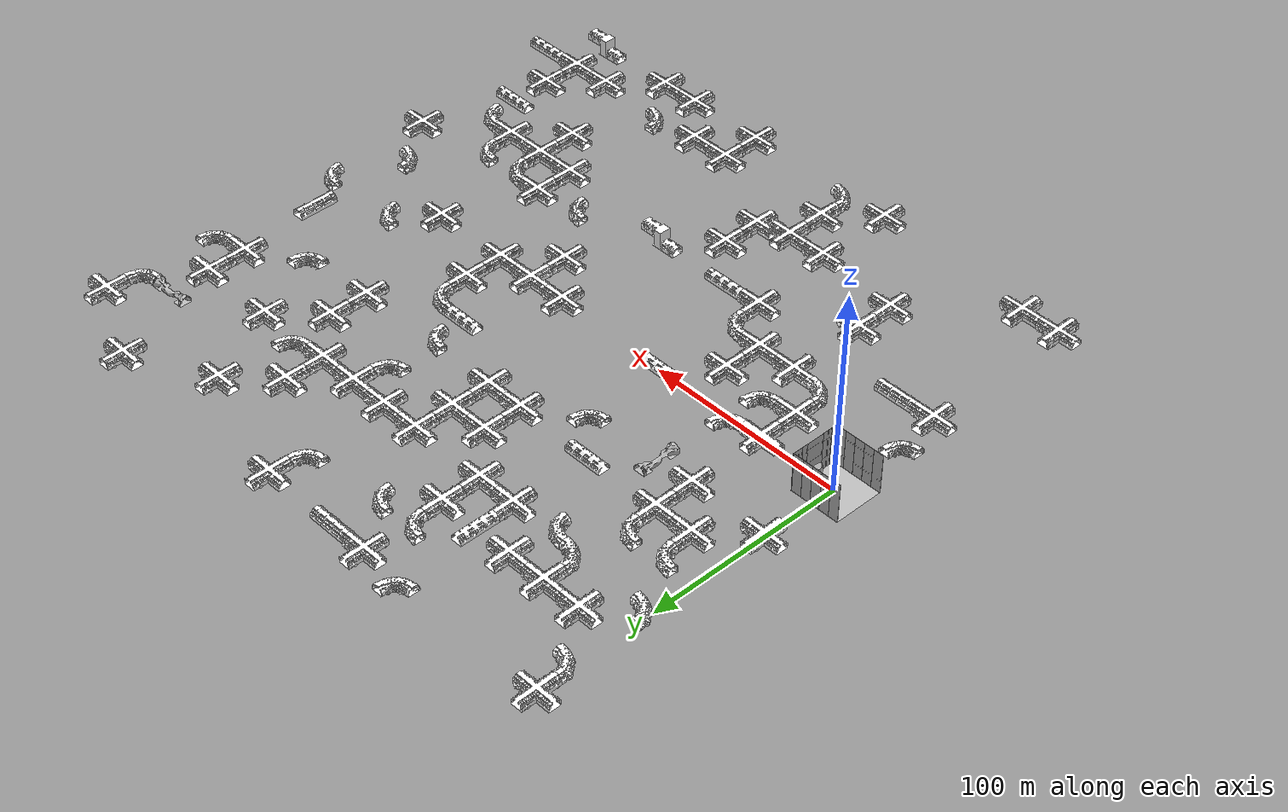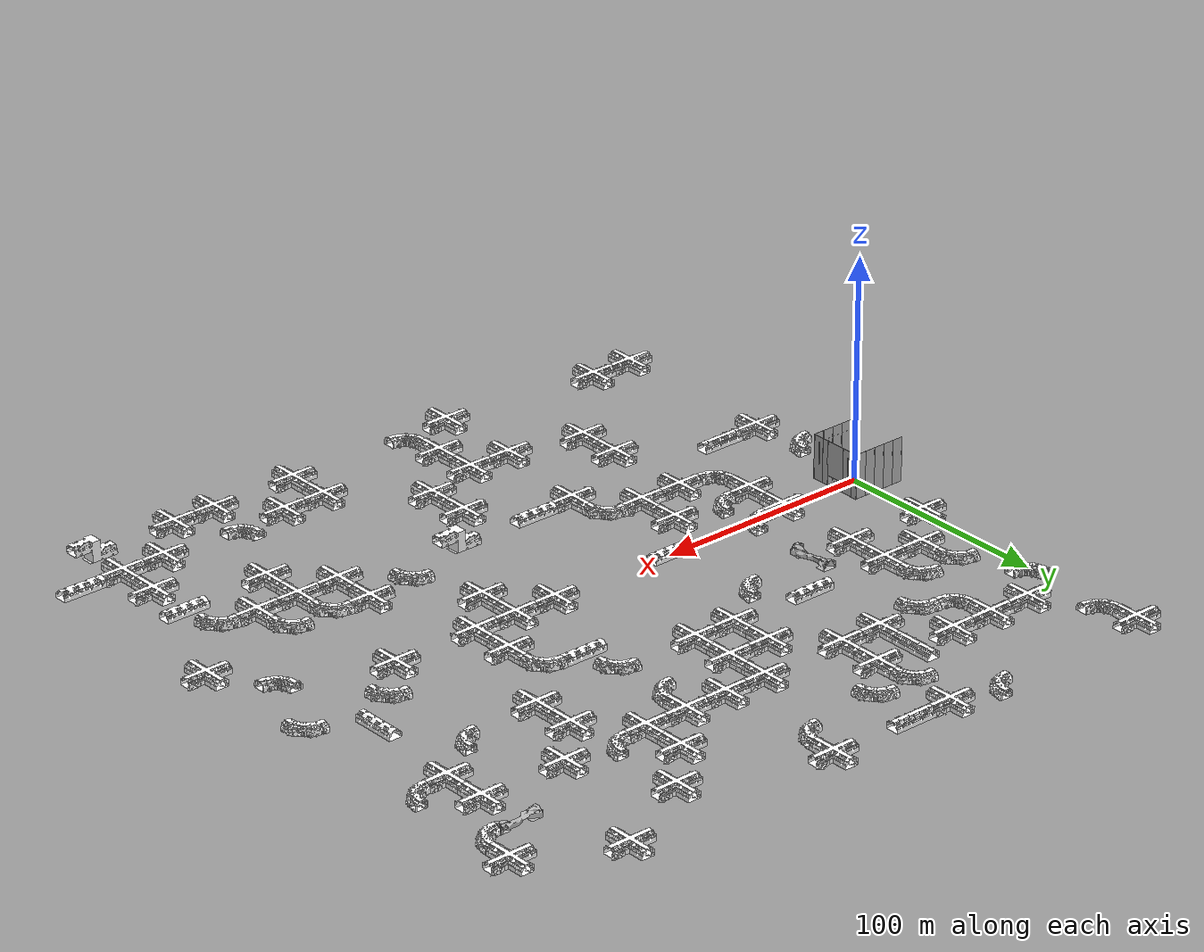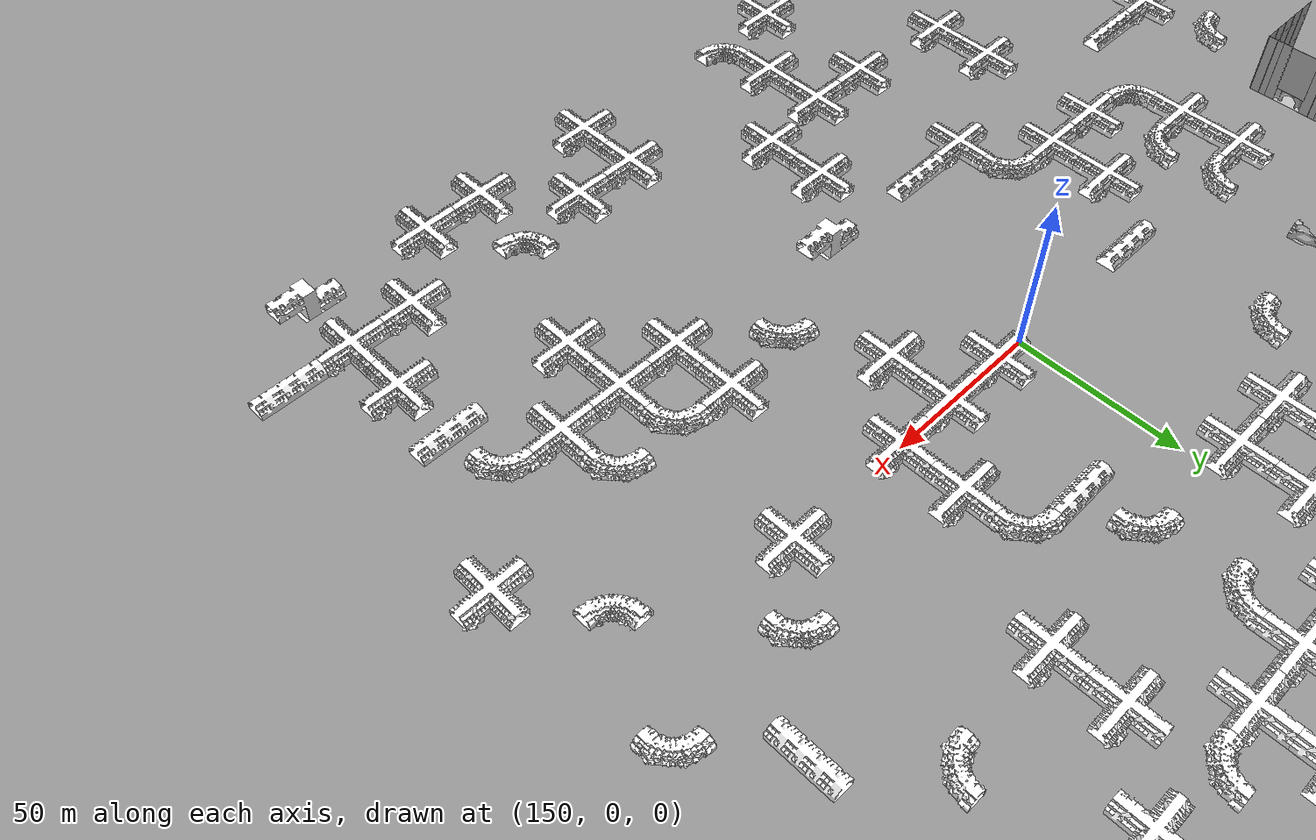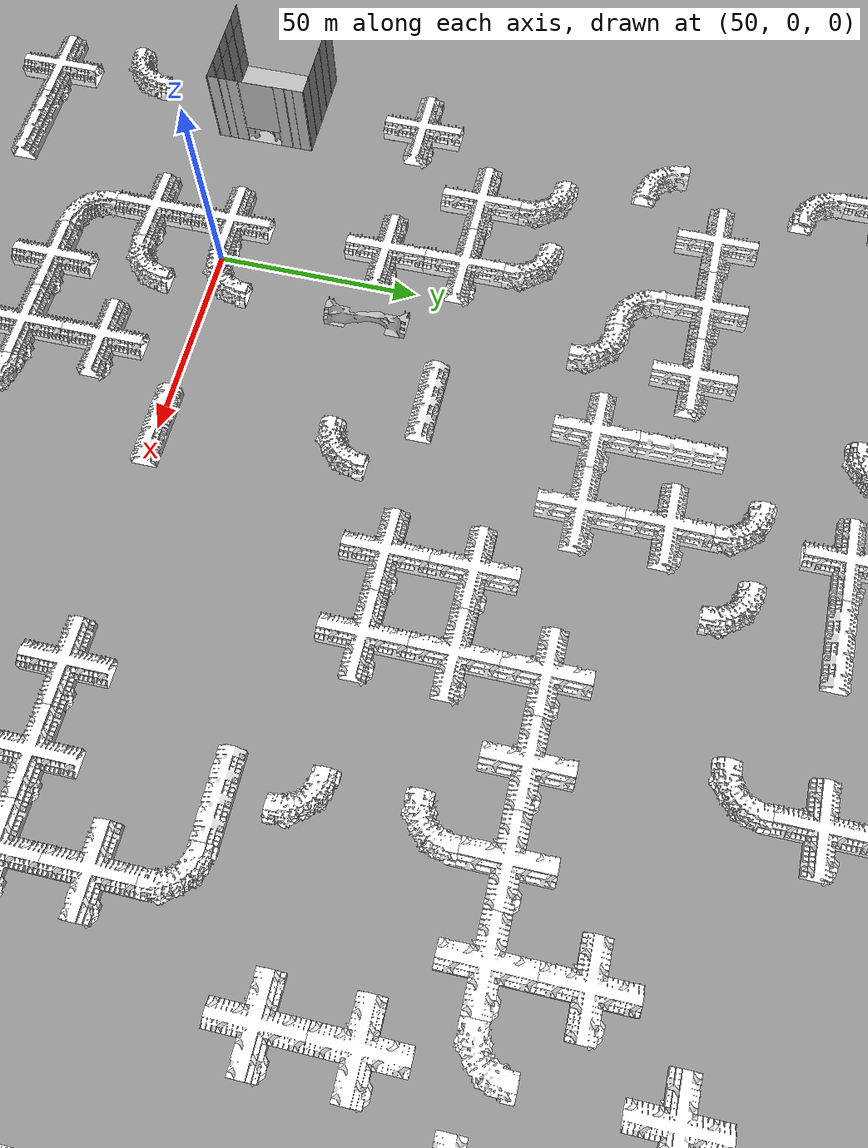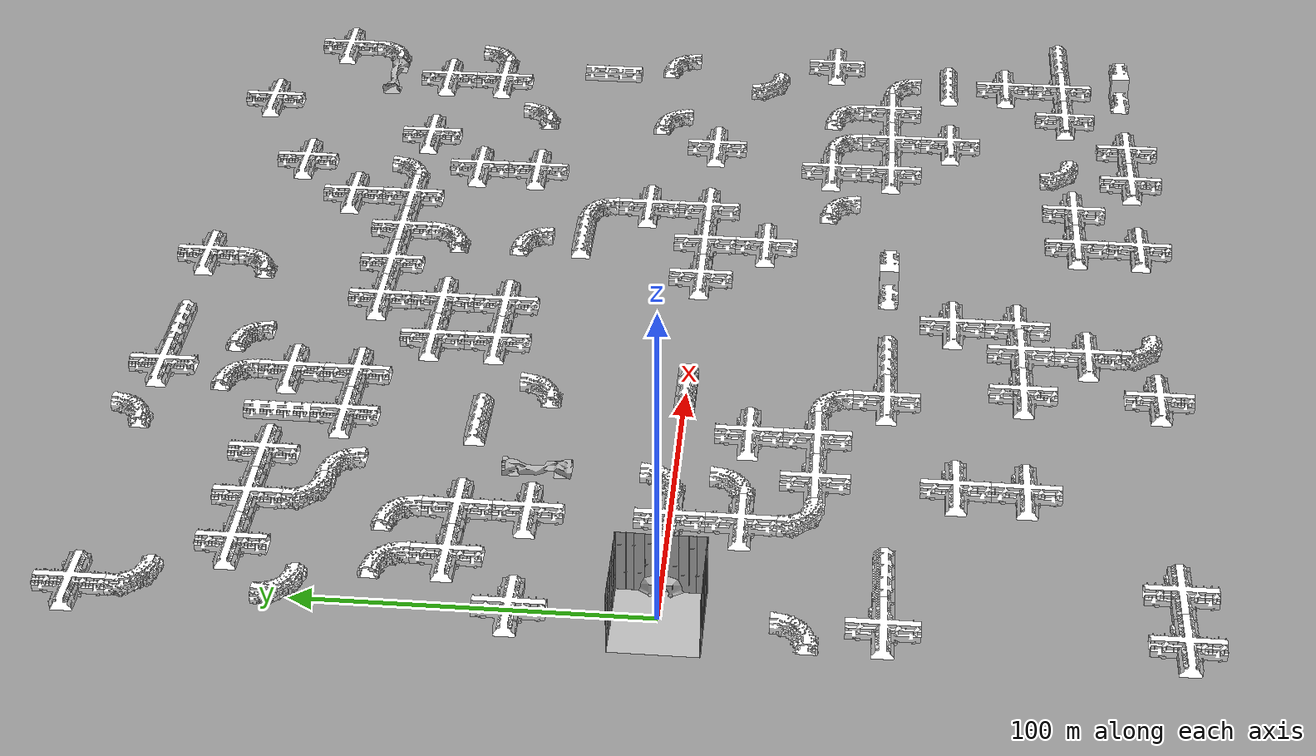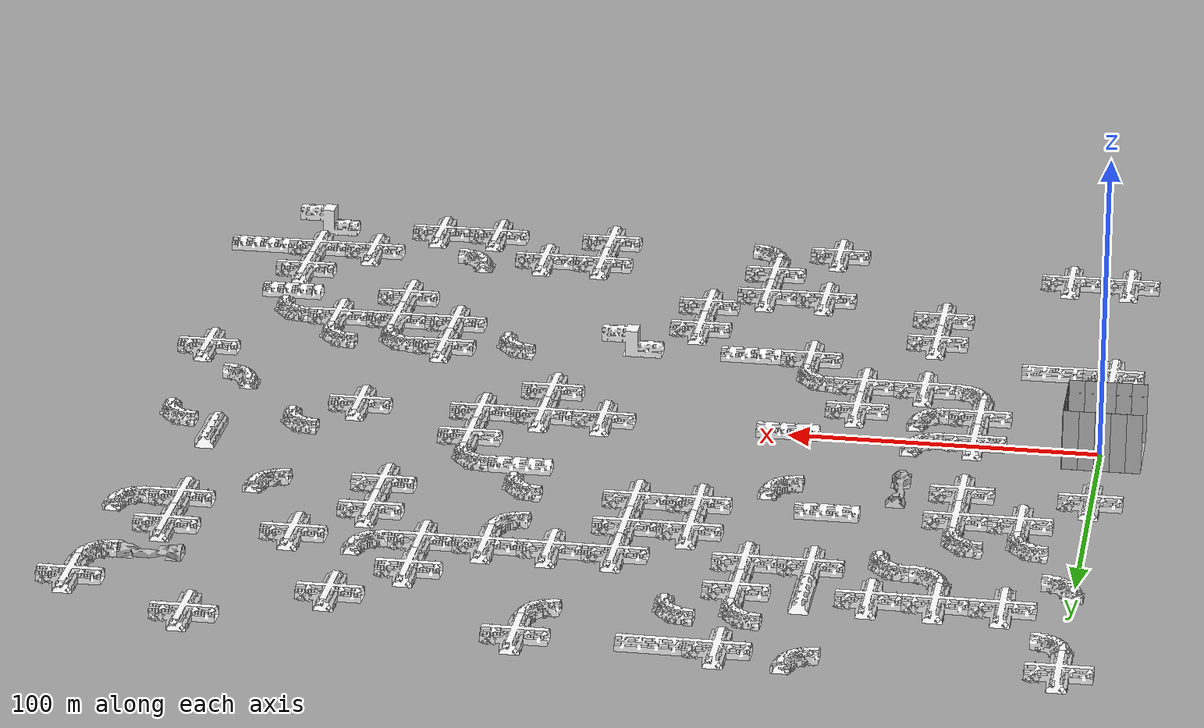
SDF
<sdf version="1.6">
 <world name="tunnel_circuit_practice_01">
  <physics name="1ms" type="ode">
   <max_step_size>0.004</max_step_size>
   <real_time_factor>1.0</real_time_factor>
  </physics>
  <scene>
   <ambient>1 1 1 1</ambient>
   <background>0.8 0.8 0.8 1</background>
   <shadows>true</shadows>
   <grid>true</grid>
   <origin_visual>true</origin_visual>
  </scene>
  <include><static>true</static><name>staging_area</name><uri>model://subt_tunnel_staging_area</uri></include>
  <include>
   <name>tile_1</name>
   <uri>model://Rough Tunnel Tile 4-way Intersection</uri>
   <pose>0.000000 160.000000 0.000000 0 0 0.000000</pose>
  </include>
  <include>
   <name>tile_12</name>
   <uri>model://Rough Tunnel Tile 90-degree Turn</uri>
   <pose>80.000000 160.000000 0.000000 0 0 3.141593</pose>
  </include>
  <include>
   <name>tile_14</name>
   <uri>model://Rough Tunnel Tile 4-way Intersection</uri>
   <pose>100.000000 160.000000 0.000000 0 0 0.000000</pose>
  </include>
  <include>
   <name>tile_18</name>
   <uri>model://Tunnel Tile 5</uri>
   <pose>120.000000 160.000000 0.000000 0 0 4.712389</pose>
  </include>
  <include>
   <name>tile_21</name>
   <uri>model://Rough Tunnel Tile 4-way Intersection</uri>
   <pose>160.000000 160.000000 0.000000 0 0 0.000000</pose>
  </include>
  <include>
   <name>tile_31</name>
   <uri>model://Rough Tunnel Tile 4-way Intersection</uri>
   <pose>260.000000 160.000000 0.000000 0 0 0.000000</pose>
  </include>
  <include>
   <name>tile_40</name>
   <uri>model://Rough Tunnel Tile 90-degree Turn</uri>
   <pose>0.000000 140.000000 0.000000 0 0 1.570796</pose>
  </include>
  <include>
   <name>tile_46</name>
   <uri>model://Rough Tunnel Tile 90-degree Turn</uri>
   <pose>100.000000 140.000000 0.000000 0 0 4.712389</pose>
  </include>
  <include>
   <name>tile_47</name>
   <uri>model://Rough Tunnel Tile 90-degree Turn</uri>
   <pose>120.000000 140.000000 0.000000 0 0 4.712389</pose>
  </include>
  <include>
   <name>tile_51</name>
   <uri>model://Rough Tunnel Tile 90-degree Turn</uri>
   <pose>160.000000 140.000000 0.000000 0 0 3.141593</pose>
  </include>
  <include>
   <name>tile_55</name>
   <uri>model://Rough Tunnel Tile 4-way Intersection</uri>
   <pose>220.000000 140.000000 0.000000 0 0 0.000000</pose>
  </include>
  <include>
   <name>tile_62</name>
   <uri>model://Rough Tunnel Tile 4-way Intersection</uri>
   <pose>300.000000 140.000000 0.000000 0 0 0.000000</pose>
  </include>
  <include>
   <name>tile_67</name>
   <uri>model://Rough Tunnel Tile 4-way Intersection</uri>
   <pose>20.000000 120.000000 0.000000 0 0 0.000000</pose>
  </include>
  <include>
   <name>tile_68</name>
   <uri>model://Rough Tunnel Tile 4-way Intersection</uri>
   <pose>40.000000 120.000000 0.000000 0 0 0.000000</pose>
  </include>
  <include>
   <name>tile_69</name>
   <uri>model://Rough Tunnel Tile 4-way Intersection</uri>
   <pose>60.000000 120.000000 0.000000 0 0 0.000000</pose>
  </include>
  <include>
   <name>tile_72</name>
   <uri>model://Tunnel Tile 5</uri>
   <pose>80.000000 120.000000 0.000000 0 0 3.141593</pose>
  </include>
  <include>
   <name>tile_73</name>
   <uri>model://Rough Tunnel Tile 4-way Intersection</uri>
   <pose>100.000000 120.000000 0.000000 0 0 0.000000</pose>
  </include>
  <include>
   <name>tile_81</name>
   <uri>model://Rough Tunnel Tile 4-way Intersection</uri>
   <pose>200.000000 120.000000 0.000000 0 0 0.000000</pose>
  </include>
  <include>
   <name>tile_86</name>
   <uri>model://Constrained Tunnel Tile Short</uri>
   <pose>280.000000 120.000000 0.000000 0 0 1.570796</pose>
  </include>
  <include>
   <name>tile_87</name>
   <uri>model://Rough Tunnel Tile 90-degree Turn</uri>
   <pose>300.000000 120.000000 0.000000 0 0 3.141593</pose>
  </include>
  <include>
   <name>tile_88</name>
   <uri>model://Rough Tunnel Tile 90-degree Turn</uri>
   <pose>0.000000 100.000000 0.000000 0 0 1.570796</pose>
  </include>
  <include>
   <name>tile_92</name>
   <uri>model://Rough Tunnel Tile 90-degree Turn</uri>
   <pose>40.000000 100.000000 0.000000 0 0 1.570796</pose>
  </include>
  <include>
   <name>tile_93</name>
   <uri>model://Rough Tunnel Tile 90-degree Turn</uri>
   <pose>60.000000 100.000000 0.000000 0 0 4.712389</pose>
  </include>
  <include>
   <name>tile_94</name>
   <uri>model://Rough Tunnel Tile 4-way Intersection</uri>
   <pose>80.000000 100.000000 0.000000 0 0 0.000000</pose>
  </include>
  <include>
   <name>tile_96</name>
   <uri>model://Rough Tunnel Tile 4-way Intersection</uri>
   <pose>100.000000 100.000000 0.000000 0 0 0.000000</pose>
  </include>
  <include>
   <name>tile_99</name>
   <uri>model://Rough Tunnel Tile 4-way Intersection</uri>
   <pose>140.000000 100.000000 0.000000 0 0 0.000000</pose>
  </include>
  <include>
   <name>tile_100</name>
   <uri>model://Rough Tunnel Tile 4-way Intersection</uri>
   <pose>160.000000 100.000000 0.000000 0 0 0.000000</pose>
  </include>
  <include>
   <name>tile_102</name>
   <uri>model://Rough Tunnel Tile 4-way Intersection</uri>
   <pose>180.000000 100.000000 0.000000 0 0 0.000000</pose>
  </include>
  <include>
   <name>tile_103</name>
   <uri>model://Rough Tunnel Tile 4-way Intersection</uri>
   <pose>200.000000 100.000000 0.000000 0 0 0.000000</pose>
  </include>
  <include>
   <name>tile_104</name>
   <uri>model://Rough Tunnel Tile 90-degree Turn</uri>
   <pose>220.000000 100.000000 0.000000 0 0 3.141593</pose>
  </include>
  <include>
   <name>tile_106</name>
   <uri>model://Rough Tunnel Tile 4-way Intersection</uri>
   <pose>240.000000 100.000000 0.000000 0 0 0.000000</pose>
  </include>
  <include>
   <name>tile_111</name>
   <uri>model://Rough Tunnel Tile 4-way Intersection</uri>
   <pose>280.000000 100.000000 0.000000 0 0 0.000000</pose>
  </include>
  <include>
   <name>tile_117</name>
   <uri>model://Rough Tunnel Tile 90-degree Turn</uri>
   <pose>20.000000 80.000000 0.000000 0 0 4.712389</pose>
  </include>
  <include>
   <name>tile_118</name>
   <uri>model://Rough Tunnel Tile 90-degree Turn</uri>
   <pose>40.000000 80.000000 0.000000 0 0 4.712389</pose>
  </include>
  <include>
   <name>tile_125</name>
   <uri>model://Rough Tunnel Tile 4-way Intersection</uri>
   <pose>120.000000 80.000000 0.000000 0 0 0.000000</pose>
  </include>
  <include>
   <name>tile_126</name>
   <uri>model://Rough Tunnel Tile 4-way Intersection</uri>
   <pose>140.000000 80.000000 0.000000 0 0 0.000000</pose>
  </include>
  <include>
   <name>tile_129</name>
   <uri>model://Rough Tunnel Tile 90-degree Turn</uri>
   <pose>180.000000 80.000000 0.000000 0 0 3.141593</pose>
  </include>
  <include>
   <name>tile_133</name>
   <uri>model://Rough Tunnel Tile 4-way Intersection</uri>
   <pose>220.000000 80.000000 0.000000 0 0 0.000000</pose>
  </include>
  <include>
   <name>tile_138</name>
   <uri>model://Rough Tunnel Tile 4-way Intersection</uri>
   <pose>280.000000 80.000000 0.000000 0 0 0.000000</pose>
  </include>
  <include>
   <name>tile_139</name>
   <uri>model://Rough Tunnel Tile 90-degree Turn</uri>
   <pose>300.000000 80.000000 0.000000 0 0 3.141593</pose>
  </include>
  <include>
   <name>tile_142</name>
   <uri>model://Rough Tunnel Tile 4-way Intersection</uri>
   <pose>20.000000 60.000000 0.000000 0 0 0.000000</pose>
  </include>
  <include>
   <name>tile_144</name>
   <uri>model://Rough Tunnel Tile 4-way Intersection</uri>
   <pose>40.000000 60.000000 0.000000 0 0 0.000000</pose>
  </include>
  <include>
   <name>tile_146</name>
   <uri>model://Tunnel Tile 5</uri>
   <pose>80.000000 60.000000 0.000000 0 0 1.570796</pose>
  </include>
  <include>
   <name>tile_148</name>
   <uri>model://Rough Tunnel Tile 4-way Intersection</uri>
   <pose>120.000000 60.000000 0.000000 0 0 0.000000</pose>
  </include>
  <include>
   <name>tile_149</name>
   <uri>model://Rough Tunnel Tile 4-way Intersection</uri>
   <pose>140.000000 60.000000 0.000000 0 0 0.000000</pose>
  </include>
  <include>
   <name>tile_151</name>
   <uri>model://Rough Tunnel Tile 90-degree Turn</uri>
   <pose>180.000000 60.000000 0.000000 0 0 4.712389</pose>
  </include>
  <include>
   <name>tile_156</name>
   <uri>model://Rough Tunnel Tile 4-way Intersection</uri>
   <pose>220.000000 60.000000 0.000000 0 0 0.000000</pose>
  </include>
  <include>
   <name>tile_159</name>
   <uri>model://Rough Tunnel Tile 90-degree Turn</uri>
   <pose>260.000000 60.000000 0.000000 0 0 3.141593</pose>
  </include>
  <include>
   <name>tile_161</name>
   <uri>model://Rough Tunnel Tile 4-way Intersection</uri>
   <pose>0.000000 40.000000 0.000000 0 0 0.000000</pose>
  </include>
  <include>
   <name>tile_165</name>
   <uri>model://Rough Tunnel Tile 4-way Intersection</uri>
   <pose>40.000000 40.000000 0.000000 0 0 0.000000</pose>
  </include>
  <include>
   <name>tile_168</name>
   <uri>model://Constrained Tunnel Tile Short</uri>
   <pose>60.000000 40.000000 0.000000 0 0 3.141593</pose>
  </include>
  <include>
   <name>tile_172</name>
   <uri>model://Rough Tunnel Tile 90-degree Turn</uri>
   <pose>100.000000 40.000000 0.000000 0 0 3.141593</pose>
  </include>
  <include>
   <name>tile_179</name>
   <uri>model://Tunnel Tile 5</uri>
   <pose>180.000000 40.000000 0.000000 0 0 1.570796</pose>
  </include>
  <include>
   <name>tile_180</name>
   <uri>model://Rough Tunnel Tile 90-degree Turn</uri>
   <pose>200.000000 40.000000 0.000000 0 0 4.712389</pose>
  </include>
  <include>
   <name>tile_187</name>
   <uri>model://Tunnel Tile 5</uri>
   <pose>280.000000 40.000000 5.000000 0 0 0.000000</pose>
  </include>
  <include>
   <name>tile_204</name>
   <uri>model://Rough Tunnel Tile 4-way Intersection</uri>
   <pose>200.000000 20.000000 0.000000 0 0 0.000000</pose>
  </include>
  <include>
   <name>tile_207</name>
   <uri>model://Rough Tunnel Tile 90-degree Turn</uri>
   <pose>260.000000 20.000000 0.000000 0 0 4.712389</pose>
  </include>
  <include>
   <name>tile_210</name>
   <uri>model://Rough Tunnel Tile 90-degree Turn</uri>
   <pose>300.000000 20.000000 0.000000 0 0 4.712389</pose>
  </include>
  <include>
   <name>tile_212</name>
   <uri>model://Rough Tunnel Tile 4-way Intersection</uri>
   <pose>40.000000 0.000000 0.000000 0 0 0.000000</pose>
  </include>
  <include>
   <name>tile_213</name>
   <uri>model://Rough Tunnel Tile 90-degree Turn</uri>
   <pose>60.000000 0.000000 0.000000 0 0 3.141593</pose>
  </include>
  <include>
   <name>tile_216</name>
   <uri>model://Tunnel Tile 5</uri>
   <pose>100.000000 0.000000 0.000000 0 0 1.570796</pose>
  </include>
  <include>
   <name>tile_220</name>
   <uri>model://Rough Tunnel Tile 4-way Intersection</uri>
   <pose>160.000000 0.000000 0.000000 0 0 0.000000</pose>
  </include>
  <include>
   <name>tile_222</name>
   <uri>model://Rough Tunnel Tile 4-way Intersection</uri>
   <pose>180.000000 0.000000 0.000000 0 0 0.000000</pose>
  </include>
  <include>
   <name>tile_223</name>
   <uri>model://Rough Tunnel Tile 4-way Intersection</uri>
   <pose>200.000000 0.000000 0.000000 0 0 0.000000</pose>
  </include>
  <include>
   <name>tile_227</name>
   <uri>model://Rough Tunnel Tile 4-way Intersection</uri>
   <pose>240.000000 0.000000 0.000000 0 0 0.000000</pose>
  </include>
  <include>
   <name>tile_235</name>
   <uri>model://Rough Tunnel Tile 4-way Intersection</uri>
   <pose>40.000000 -20.000000 0.000000 0 0 0.000000</pose>
  </include>
  <include>
   <name>tile_236</name>
   <uri>model://Rough Tunnel Tile 90-degree Turn</uri>
   <pose>60.000000 -20.000000 0.000000 0 0 3.141593</pose>
  </include>
  <include>
   <name>tile_238</name>
   <uri>model://Rough Tunnel Tile 4-way Intersection</uri>
   <pose>80.000000 -20.000000 0.000000 0 0 0.000000</pose>
  </include>
  <include>
   <name>tile_248</name>
   <uri>model://Rough Tunnel Tile 4-way Intersection</uri>
   <pose>180.000000 -20.000000 0.000000 0 0 0.000000</pose>
  </include>
  <include>
   <name>tile_259</name>
   <uri>model://Rough Tunnel Tile 90-degree Turn</uri>
   <pose>280.000000 -20.000000 0.000000 0 0 1.570796</pose>
  </include>
  <include>
   <name>tile_262</name>
   <uri>model://Rough Tunnel Tile 90-degree Turn</uri>
   <pose>0.000000 -40.000000 0.000000 0 0 3.141593</pose>
  </include>
  <include>
   <name>tile_266</name>
   <uri>model://Rough Tunnel Tile 90-degree Turn</uri>
   <pose>40.000000 -40.000000 0.000000 0 0 1.570796</pose>
  </include>
  <include>
   <name>tile_267</name>
   <uri>model://Rough Tunnel Tile 4-way Intersection</uri>
   <pose>60.000000 -40.000000 0.000000 0 0 0.000000</pose>
  </include>
  <include>
   <name>tile_269</name>
   <uri>model://Rough Tunnel Tile 4-way Intersection</uri>
   <pose>80.000000 -40.000000 0.000000 0 0 0.000000</pose>
  </include>
  <include>
   <name>tile_270</name>
   <uri>model://Rough Tunnel Tile 90-degree Turn</uri>
   <pose>100.000000 -40.000000 0.000000 0 0 4.712389</pose>
  </include>
  <include>
   <name>tile_278</name>
   <uri>model://Rough Tunnel Tile 90-degree Turn</uri>
   <pose>200.000000 -40.000000 5.000000 0 0 4.712389</pose>
  </include>
  <include>
   <name>tile_280</name>
   <uri>model://Rough Tunnel Tile 4-way Intersection</uri>
   <pose>220.000000 -40.000000 5.000000 0 0 0.000000</pose>
  </include>
  <include>
   <name>tile_283</name>
   <uri>model://Rough Tunnel Tile 90-degree Turn</uri>
   <pose>240.000000 -40.000000 5.000000 0 0 4.712389</pose>
  </include>
  <include>
   <name>tile_284</name>
   <uri>model://Rough Tunnel Tile 90-degree Turn</uri>
   <pose>260.000000 -40.000000 5.000000 0 0 4.712389</pose>
  </include>
  <include>
   <name>tile_290</name>
   <uri>model://Rough Tunnel Tile 4-way Intersection</uri>
   <pose>300.000000 -40.000000 0.000000 0 0 0.000000</pose>
  </include>
  <include>
   <name>tile_293</name>
   <uri>model://Rough Tunnel Tile 4-way Intersection</uri>
   <pose>0.000000 -60.000000 0.000000 0 0 0.000000</pose>
  </include>
  <include>
   <name>tile_296</name>
   <uri>model://Tunnel Tile 5</uri>
   <pose>20.000000 -60.000000 0.000000 0 0 4.712389</pose>
  </include>
  <include>
   <name>tile_302</name>
   <uri>model://Rough Tunnel Tile 4-way Intersection</uri>
   <pose>100.000000 -60.000000 0.000000 0 0 0.000000</pose>
  </include>
  <include>
   <name>tile_303</name>
   <uri>model://Tunnel Tile 5</uri>
   <pose>120.000000 -60.000000 0.000000 0 0 1.570796</pose>
  </include>
  <include>
   <name>tile_305</name>
   <uri>model://Tunnel Tile 7</uri>
   <pose>160.000000 -60.000000 0.000000 0 0 4.712389</pose>
  </include>
  <include>
   <name>tile_308</name>
   <uri>model://Rough Tunnel Tile 4-way Intersection</uri>
   <pose>220.000000 -60.000000 5.000000 0 0 0.000000</pose>
  </include>
  <include>
   <name>tile_309</name>
   <uri>model://Rough Tunnel Tile 4-way Intersection</uri>
   <pose>240.000000 -60.000000 5.000000 0 0 0.000000</pose>
  </include>
  <include>
   <name>tile_310</name>
   <uri>model://Rough Tunnel Tile 4-way Intersection</uri>
   <pose>260.000000 -60.000000 5.000000 0 0 0.000000</pose>
  </include>
  <include>
   <name>tile_311</name>
   <uri>model://Rough Tunnel Tile 90-degree Turn</uri>
   <pose>280.000000 -60.000000 5.000000 0 0 4.712389</pose>
  </include>
  <include>
   <name>tile_322</name>
   <uri>model://Rough Tunnel Tile 4-way Intersection</uri>
   <pose>60.000000 -80.000000 0.000000 0 0 0.000000</pose>
  </include>
  <include>
   <name>tile_328</name>
   <uri>model://Rough Tunnel Tile 4-way Intersection</uri>
   <pose>140.000000 -80.000000 0.000000 0 0 0.000000</pose>
  </include>
  <include>
   <name>tile_335</name>
   <uri>model://Rough Tunnel Tile 4-way Intersection</uri>
   <pose>240.000000 -80.000000 5.000000 0 0 0.000000</pose>
  </include>
  <include>
   <name>tile_337</name>
   <uri>model://Tunnel Tile 5</uri>
   <pose>280.000000 -80.000000 5.000000 0 0 1.570796</pose>
  </include>
  <include>
   <name>tile_344</name>
   <uri>model://Rough Tunnel Tile 4-way Intersection</uri>
   <pose>60.000000 -100.000000 0.000000 0 0 0.000000</pose>
  </include>
  <include>
   <name>tile_349</name>
   <uri>model://Rough Tunnel Tile 4-way Intersection</uri>
   <pose>100.000000 -100.000000 5.000000 0 0 0.000000</pose>
  </include>
  <include>
   <name>tile_351</name>
   <uri>model://Rough Tunnel Tile 4-way Intersection</uri>
   <pose>120.000000 -100.000000 5.000000 0 0 0.000000</pose>
  </include>
  <include>
   <name>tile_354</name>
   <uri>model://Rough Tunnel Tile 4-way Intersection</uri>
   <pose>140.000000 -100.000000 0.000000 0 0 0.000000</pose>
  </include>
  <include>
   <name>tile_365</name>
   <uri>model://Rough Tunnel Tile 4-way Intersection</uri>
   <pose>280.000000 -100.000000 5.000000 0 0 0.000000</pose>
  </include>
  <include>
   <name>tile_380</name>
   <uri>model://Rough Tunnel Tile 4-way Intersection</uri>
   <pose>120.000000 -120.000000 5.000000 0 0 0.000000</pose>
  </include>
  <include>
   <name>tile_386</name>
   <uri>model://Rough Tunnel Tile 4-way Intersection</uri>
   <pose>180.000000 -120.000000 5.000000 0 0 0.000000</pose>
  </include>
  <include>
   <name>tile_388</name>
   <uri>model://Rough Tunnel Tile 4-way Intersection</uri>
   <pose>200.000000 -120.000000 5.000000 0 0 0.000000</pose>
  </include>
  <include>
   <name>tile_390</name>
   <uri>model://Rough Tunnel Tile 90-degree Turn</uri>
   <pose>220.000000 -120.000000 5.000000 0 0 1.570796</pose>
  </include>
  <include>
   <name>tile_393</name>
   <uri>model://Rough Tunnel Tile 4-way Intersection</uri>
   <pose>260.000000 -120.000000 5.000000 0 0 0.000000</pose>
  </include>
  <include>
   <name>tile_394</name>
   <uri>model://Rough Tunnel Tile 4-way Intersection</uri>
   <pose>280.000000 -120.000000 5.000000 0 0 0.000000</pose>
  </include>
  <include>
   <name>tile_396</name>
   <uri>model://Tunnel Tile 5</uri>
   <pose>300.000000 -120.000000 5.000000 0 0 1.570796</pose>
  </include>
  <include>
   <name>tile_398</name>
   <uri>model://Rough Tunnel Tile 4-way Intersection</uri>
   <pose>0.000000 -140.000000 0.000000 0 0 0.000000</pose>
  </include>
  <include>
   <name>tile_402</name>
   <uri>model://Rough Tunnel Tile 4-way Intersection</uri>
   <pose>20.000000 -140.000000 0.000000 0 0 0.000000</pose>
  </include>
  <include>
   <name>tile_412</name>
   <uri>model://Rough Tunnel Tile 4-way Intersection</uri>
   <pose>100.000000 -140.000000 5.000000 0 0 0.000000</pose>
  </include>
  <include>
   <name>tile_416</name>
   <uri>model://Rough Tunnel Tile 90-degree Turn</uri>
   <pose>120.000000 -140.000000 5.000000 0 0 1.570796</pose>
  </include>
  <include>
   <name>tile_423</name>
   <uri>model://Rough Tunnel Tile 4-way Intersection</uri>
   <pose>180.000000 -140.000000 5.000000 0 0 0.000000</pose>
  </include>
  <include>
   <name>tile_428</name>
   <uri>model://Rough Tunnel Tile 4-way Intersection</uri>
   <pose>220.000000 -140.000000 5.000000 0 0 0.000000</pose>
  </include>
  <include>
   <name>tile_431</name>
   <uri>model://Rough Tunnel Tile 4-way Intersection</uri>
   <pose>240.000000 -140.000000 5.000000 0 0 0.000000</pose>
  </include>
  <include>
   <name>tile_435</name>
   <uri>model://Tunnel Tile 7</uri>
   <pose>280.000000 -140.000000 5.000000 0 0 4.712389</pose>
  </include>
 </world>
</sdf>

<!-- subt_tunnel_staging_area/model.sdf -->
<sdf version="1.6">
    <model name="subt_tunnel_staging_area">
        <static>true</static>
        <link name="link">
            <collision name="collision1">
                <pose>-10 -10 20 0 0 0</pose>
                <geometry>
                    <box>
                        <size>0.1 0.1 0.1</size>
                    </box>
                </geometry>
            </collision>
            <collision name="collision2">
                <pose>10 10 20 0 0 0</pose>
                <geometry>
                    <box>
                        <size>0.1 0.1 0.1</size>
                    </box>
                </geometry>
            </collision>
            <!-- The flat area where the robots starts -->
            <visual name="plane_visual">
                <pose>-1.181716 0 0 0 0 0</pose>
                <geometry>
                    <mesh>
                      <uri>model://subt_tunnel_staging_area/meshes/Asphalt_Plane.DAE</uri>
                    </mesh>
                </geometry>
            </visual>
            <visual name="fence_right1">
                <pose>8.818284 -12.4 0 1.5707 0 0</pose>
                <geometry>
                    <mesh>
                      <uri>model://subt_tunnel_staging_area/meshes/Fence.dae</uri>
                        <scale>1 6.7 1</scale>
                    </mesh>
                </geometry>
            </visual>
            <visual name="fence_right2">
                <pose>3.818284 -12.4 0 1.5707 0 0</pose>
                <geometry>
                    <mesh>
                      <uri>model://subt_tunnel_staging_area/meshes/Fence.dae</uri>
                        <scale>1 6.7 1</scale>
                    </mesh>
                </geometry>
            </visual>
            <visual name="fence_right3">
                <pose>-1.181716 -12.4 0 1.5707 0 0</pose>
                <geometry>
                    <mesh>
                      <uri>model://subt_tunnel_staging_area/meshes/Fence.dae</uri>
                        <scale>1 6.7 1</scale>
                    </mesh>
                </geometry>
            </visual>
            <visual name="fence_right4">
                <pose>-6.181716 -12.4 0 1.5707 0 0</pose>
                <geometry>
                    <mesh>
                      <uri>model://subt_tunnel_staging_area/meshes/Fence.dae</uri>
                        <scale>1 6.7 1</scale>
                    </mesh>
                </geometry>
            </visual>
            <visual name="fence_right5">
                <pose>-11.181716 -12.4 0 1.5707 0 0</pose>
                <geometry>
                    <mesh>
                      <uri>model://subt_tunnel_staging_area/meshes/Fence.dae</uri>
                        <scale>1 6.7 1</scale>
                    </mesh>
                </geometry>
            </visual>

            <visual name="fence_left1">
                <pose>8.818284 12.4 0 1.5707 0 3.1415</pose>
                <geometry>
                    <mesh>
                      <uri>model://subt_tunnel_staging_area/meshes/Fence.dae</uri>
                        <scale>1 6.7 1</scale>
                    </mesh>
                </geometry>
            </visual>
            <visual name="fence_left2">
                <pose>3.818284 12.4 0 1.5707 0 3.1415</pose>
                <geometry>
                    <mesh>
                      <uri>model://subt_tunnel_staging_area/meshes/Fence.dae</uri>
                        <scale>1 6.7 1</scale>
                    </mesh>
                </geometry>
            </visual>
            <visual name="fence_left3">
                <pose>-1.181716 12.4 0 1.5707 0 3.1415</pose>
                <geometry>
                    <mesh>
                      <uri>model://subt_tunnel_staging_area/meshes/Fence.dae</uri>
                        <scale>1 6.7 1</scale>
                    </mesh>
                </geometry>
            </visual>
            <visual name="fence_left4">
                <pose>-6.181716 12.4 0 1.5707 0 3.1415</pose>
                <geometry>
                    <mesh>
                      <uri>model://subt_tunnel_staging_area/meshes/Fence.dae</uri>
                        <scale>1 6.7 1</scale>
                    </mesh>
                </geometry>
            </visual>
            <visual name="fence_left5">
                <pose>-11.181716 12.4 0 1.5707 0 3.1415</pose>
                <geometry>
                    <mesh>
                      <uri>model://subt_tunnel_staging_area/meshes/Fence.dae</uri>
                        <scale>1 6.7 1</scale>
                    </mesh>
                </geometry>
            </visual>

            <visual name="fence_front_left1">
                <pose>11.3181716 10 0 1.5707 0 1.5707</pose>
                <geometry>
                    <mesh>
                      <uri>model://subt_tunnel_staging_area/meshes/Fence.dae</uri>
                        <scale>1 6.7 1</scale>
                    </mesh>
                </geometry>
            </visual>
            <visual name="fence_front_left2">
                <pose>11.3181716 7 0 1.5707 0 1.5707</pose>
                <geometry>
                    <mesh>
                      <uri>model://subt_tunnel_staging_area/meshes/Fence.dae</uri>
                        <scale>1 6.7 1</scale>
                    </mesh>
                </geometry>
            </visual>
            <visual name="fence_front_right1">
                <pose>11.3181716 -10 0 1.5707 0 1.5707</pose>
                <geometry>
                    <mesh>
                      <uri>model://subt_tunnel_staging_area/meshes/Fence.dae</uri>
                        <scale>1 6.7 1</scale>
                    </mesh>
                </geometry>
            </visual>
            <visual name="fence_front_right2">
                <pose>11.3181716 -7 0 1.5707 0 1.5707</pose>
                <geometry>
                    <mesh>
                      <uri>model://subt_tunnel_staging_area/meshes/Fence.dae</uri>
                        <scale>1 6.7 1</scale>
                    </mesh>
                </geometry>
            </visual>
            <visual name="fence_front_top">
                <pose>11.3181716 0 4.5 1.5707 0 1.5707</pose>
                <geometry>
                    <mesh>
                      <uri>model://subt_tunnel_staging_area/meshes/Fence.dae</uri>
                        <scale>1.8 5.17 1</scale>
                    </mesh>
                </geometry>
            </visual>

            <collision name="ceiling_collision">
                <pose>-1.181716 0 20.5 0 0 0</pose>
                <geometry>
                    <box>
                        <size>25 25 1</size>
                    </box>
                </geometry>
            </collision>
            <collision name="right_collision">
                <pose>-1.181716 -13 10.5 0 0 0</pose>
                <geometry>
                    <box>
                        <size>25 1 21</size>
                    </box>
                </geometry>
            </collision>
            <collision name="left_collision">
                <pose>-1.181716 13 10.5 0 0 0</pose>
                <geometry>
                    <box>
                        <size>25 1 21</size>
                    </box>
                </geometry>
            </collision>
            <collision name="rear_collision">
                <pose>-13.6181716 0 10.5 0 0 0</pose>
                <geometry>
                    <box>
                        <size>1 25 21</size>
                    </box>
                </geometry>
            </collision>
            <collision name="front_left_collision">
                <pose>11.3181716 8.75 10.5 0 0 0</pose>
                <geometry>
                    <box>
                        <size>1 9.5 21</size>
                    </box>
                </geometry>
            </collision>
            <collision name="front_right_collision">
                <pose>11.3181716 -8.75 10.5 0 0 0</pose>
                <geometry>
                    <box>
                        <size>1 9.5 21</size>
                    </box>
                </geometry>
            </collision>
            <collision name="front_top_collision">
                <pose>11.3181716 0 12.5 0 0 0</pose>
                <geometry>
                    <box>
                        <size>1 8 15</size>
                    </box>
                </geometry>
            </collision>

            <collision name="plane_collision">
                <pose>-1.181716 0 -0.502 0 0 0</pose>
                <geometry>
                    <box>
                        <size>25 25 1</size>
                    </box>
                </geometry>
            </collision>
            <!-- Entry to the tunnel -->
            <collision name="collision">
                <pose>10 0 -0.001 0 0 -1.5707963267948966</pose>
                <geometry>
                    <mesh>
                        <scale>0.93 0.93 0.93</scale>
                        <uri>model://subt_tunnel_staging_area/meshes/Entrance.dae</uri>
                    </mesh>
                </geometry>
            </collision>
            <visual name="visual">
                <pose>10 0 -0.001 0 0 -1.5707963267948966</pose>
                <geometry>
                    <mesh>
                        <scale>0.93 0.93 0.93</scale>
                        <uri>model://subt_tunnel_staging_area/meshes/Entrance.dae</uri>
                    </mesh>
                </geometry>
            </visual>
        </link>
    </model>
</sdf>

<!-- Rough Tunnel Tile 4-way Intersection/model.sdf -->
<sdf version="1.6">
  <model name="Rough Tunnel Tile 4-way Intersection">
    <static>true</static>
    <link name="link">
      <collision name="collision">
        <geometry>
          <mesh>
            <uri>model://Rough Tunnel Tile 4-way Intersection/meshes/4way_intersection_collider.dae</uri>
          </mesh>
        </geometry>
      </collision>
      <collision name="collision_ground">
        <geometry>
          <box>
            <size>20 20 0.001</size>
          </box>
        </geometry>
      </collision>

      <!-- rough terrain tile -->
      <visual name="visual_rough_rocks">
        <geometry>
          <mesh>
            <uri>model://Rough Tunnel Tile 4-way Intersection/meshes/4way_intersection_rough_terrain.dae</uri>
            <submesh>
              <name>Rocks</name>
              <center>false</center>
            </submesh>
            <scale>1.005 1.005 1.0</scale>
          </mesh>
        </geometry>
        <material>
          <diffuse>1.0 1.0 1.0</diffuse>
          <specular>1.0 1.0 1.0</specular>
          <script>
              <uri>model://Rough Tunnel Tile 4-way Intersection/materials/scripts</uri>
              <uri>model://Rough Tunnel Tile 4-way Intersection/materials/textures</uri>
              <name>RoughTunnelTile/Rocks_Diffuse</name>
          </script>
        </material>
      </visual>
      <visual name="visual_rough_rock_pile">
        <geometry>
          <mesh>
            <uri>model://Rough Tunnel Tile 4-way Intersection/meshes/4way_intersection_rough_terrain.dae</uri>
            <submesh>
              <name>RockPile</name>
              <center>false</center>
            </submesh>
            <scale>1.005 1.005 1.0</scale>
          </mesh>
        </geometry>
        <material>
          <diffuse>1.0 1.0 1.0</diffuse>
          <specular>1.0 1.0 1.0</specular>
          <script>
              <uri>model://Rough Tunnel Tile 4-way Intersection/materials/scripts</uri>
              <uri>model://Rough Tunnel Tile 4-way Intersection/materials/textures</uri>
              <name>RoughTunnelTile/RockPile_Diffuse</name>
          </script>
        </material>
      </visual>
      <visual name="visual_rough_concrete">
        <geometry>
          <mesh>
            <uri>model://Rough Tunnel Tile 4-way Intersection/meshes/4way_intersection_rough_terrain.dae</uri>
            <submesh>
              <name>Concrete</name>
              <center>false</center>
            </submesh>
            <scale>1.005 1.005 1.0</scale>
          </mesh>
        </geometry>
        <material>
          <diffuse>1.0 1.0 1.0</diffuse>
          <specular>1.0 1.0 1.0</specular>
          <script>
              <uri>model://Rough Tunnel Tile 4-way Intersection/materials/scripts</uri>
              <uri>model://Rough Tunnel Tile 4-way Intersection/materials/textures</uri>
              <name>RoughTunnelTile/ConcreteRubble_Diffuse</name>
          </script>
        </material>
      </visual>
      <visual name="visual_rough_wood">
        <geometry>
          <mesh>
            <uri>model://Rough Tunnel Tile 4-way Intersection/meshes/4way_intersection_rough_terrain.dae</uri>
            <submesh>
              <name>Wood</name>
              <center>false</center>
            </submesh>
            <scale>1.005 1.005 1.0</scale>
          </mesh>
        </geometry>
        <material>
          <diffuse>1.0 1.0 1.0</diffuse>
          <script>
              <uri>model://Rough Tunnel Tile 4-way Intersection/materials/scripts</uri>
              <uri>model://Rough Tunnel Tile 4-way Intersection/materials/textures</uri>
              <name>RoughTunnelTile/RoughWood_Diffuse</name>
          </script>
        </material>
      </visual>

      <!-- normal terrain tile -->
      <visual name="visual_chainlink">
        <geometry>
          <mesh>
            <uri>model://Rough Tunnel Tile 4-way Intersection/meshes/tunnel_tile_1.dae</uri>
            <submesh>
              <name>Chainlink</name>
              <center>false</center>
            </submesh>
            <scale>1.005 1.005 1.0</scale>
          </mesh>
        </geometry>
        <material>
          <diffuse>1.0 1.0 1.0</diffuse>
          <specular>1.0 1.0 1.0</specular>
          <script>
              <uri>model://Rough Tunnel Tile 4-way Intersection/materials/scripts</uri>
              <uri>model://Rough Tunnel Tile 4-way Intersection/materials/textures</uri>
              <name>TunnelTile/Chainlink_Diffuse</name>
          </script>
        </material>
      </visual>
      <visual name="visual_ground">
        <geometry>
          <mesh>
            <uri>model://Rough Tunnel Tile 4-way Intersection/meshes/tunnel_tile_1.dae</uri>
            <submesh>
              <name>Ground</name>
              <center>false</center>
            </submesh>
            <scale>1.005 1.005 1.0</scale>
          </mesh>
        </geometry>
        <material>
          <diffuse>1.0 1.0 1.0</diffuse>
          <specular>1.0 1.0 1.0</specular>
          <script>
              <uri>model://Rough Tunnel Tile 4-way Intersection/materials/scripts</uri>
              <uri>model://Rough Tunnel Tile 4-way Intersection/materials/textures</uri>
              <name>TunnelTile/Ground_Diffuse</name>
          </script>
        </material>
      </visual>
      <visual name="visual_wood">
        <geometry>
          <mesh>
            <uri>model://Rough Tunnel Tile 4-way Intersection/meshes/tunnel_tile_1.dae</uri>
            <submesh>
              <name>Wood</name>
              <center>false</center>
            </submesh>
            <scale>1.005 1.005 1.0</scale>
          </mesh>
        </geometry>
        <material>
          <diffuse>1.0 1.0 1.0</diffuse>
          <script>
              <uri>model://Rough Tunnel Tile 4-way Intersection/materials/scripts</uri>
              <uri>model://Rough Tunnel Tile 4-way Intersection/materials/textures</uri>
              <name>TunnelTile/Wood_Diffuse</name>
          </script>
        </material>
      </visual>
      <visual name="visual_walls">
        <geometry>
          <mesh>
            <uri>model://Rough Tunnel Tile 4-way Intersection/meshes/tunnel_tile_1.dae</uri>
            <submesh>
              <name>Walls</name>
              <center>false</center>
            </submesh>
            <scale>1.005 1.005 1.0</scale>
          </mesh>
        </geometry>
        <material>
          <diffuse>1.0 1.0 1.0</diffuse>
          <specular>1.0 1.0 1.0</specular>
          <script>
              <uri>model://Rough Tunnel Tile 4-way Intersection/materials/scripts</uri>
              <uri>model://Rough Tunnel Tile 4-way Intersection/materials/textures</uri>
              <name>TunnelTile/Walls_Diffuse</name>
          </script>
        </material>
      </visual>
      <visual name="visual_lights">
        <geometry>
          <mesh>
            <uri>model://Rough Tunnel Tile 4-way Intersection/meshes/tunnel_tile_1.dae</uri>
            <submesh>
              <name>Lights</name>
              <center>false</center>
            </submesh>
            <scale>1.005 1.005 1.0</scale>
          </mesh>
        </geometry>
        <material>
          <diffuse>1.0 1.0 1.0</diffuse>
          <specular>1.0 1.0 1.0</specular>
          <script>
              <uri>model://Rough Tunnel Tile 4-way Intersection/materials/scripts</uri>
              <uri>model://Rough Tunnel Tile 4-way Intersection/materials/textures</uri>
              <name>TunnelTile/Light_Diffuse</name>
          </script>
        </material>
      </visual>

    </link>
  </model>
</sdf>

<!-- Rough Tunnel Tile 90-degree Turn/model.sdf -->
<sdf version="1.6">
  <model name="Rough Tunnel Tile 90-degree Turn">
    <static>true</static>
    <link name="link">
      <collision name="collision">
        <geometry>
          <mesh>
            <uri>model://Rough Tunnel Tile 90-degree Turn/meshes/90deg_turn_collider.dae</uri>
          </mesh>
        </geometry>
      </collision>
      <collision name="collision_ground">
        <geometry>
          <box>
            <size>5 20 0.001</size>
          </box>
        </geometry>
      </collision>

      <!-- rough terrain tile -->
      <visual name="visual_rough_rocks">
        <geometry>
          <mesh>
            <uri>model://Rough Tunnel Tile 90-degree Turn/meshes/90deg_turn_rough_terrain.dae</uri>
            <submesh>
              <name>Rocks</name>
              <center>false</center>
            </submesh>
            <scale>1.005 1.005 1.0</scale>
          </mesh>
        </geometry>
        <material>
          <diffuse>1.0 1.0 1.0</diffuse>
          <specular>1.0 1.0 1.0</specular>
          <script>
              <uri>model://Rough Tunnel Tile 90-degree Turn/materials/scripts</uri>
              <uri>model://Rough Tunnel Tile 90-degree Turn/materials/textures</uri>
              <name>RoughTunnelTile/Rocks_Diffuse</name>
          </script>
        </material>
      </visual>
      <visual name="visual_rough_rock_pile">
        <geometry>
          <mesh>
            <uri>model://Rough Tunnel Tile 90-degree Turn/meshes/90deg_turn_rough_terrain.dae</uri>
            <submesh>
              <name>RockPile</name>
              <center>false</center>
            </submesh>
            <scale>1.005 1.005 1.0</scale>
          </mesh>
        </geometry>
        <material>
          <diffuse>1.0 1.0 1.0</diffuse>
          <specular>1.0 1.0 1.0</specular>
          <script>
              <uri>model://Rough Tunnel Tile 90-degree Turn/materials/scripts</uri>
              <uri>model://Rough Tunnel Tile 90-degree Turn/materials/textures</uri>
              <name>RoughTunnelTile/RockPile_Diffuse</name>
          </script>
        </material>
      </visual>
      <visual name="visual_rough_concrete">
        <geometry>
          <mesh>
            <uri>model://Rough Tunnel Tile 90-degree Turn/meshes/90deg_turn_rough_terrain.dae</uri>
            <submesh>
              <name>Concrete</name>
              <center>false</center>
            </submesh>
            <scale>1.005 1.005 1.0</scale>
          </mesh>
        </geometry>
        <material>
          <diffuse>1.0 1.0 1.0</diffuse>
          <specular>1.0 1.0 1.0</specular>
          <script>
              <uri>model://Rough Tunnel Tile 90-degree Turn/materials/scripts</uri>
              <uri>model://Rough Tunnel Tile 90-degree Turn/materials/textures</uri>
              <name>RoughTunnelTile/ConcreteRubble_Diffuse</name>
          </script>
        </material>
      </visual>
      <visual name="visual_rough_wood">
        <geometry>
          <mesh>
            <uri>model://Rough Tunnel Tile 90-degree Turn/meshes/90deg_turn_rough_terrain.dae</uri>
            <submesh>
              <name>Wood</name>
              <center>false</center>
            </submesh>
            <scale>1.005 1.005 1.0</scale>
          </mesh>
        </geometry>
        <material>
          <diffuse>1.0 1.0 1.0</diffuse>
          <script>
              <uri>model://Rough Tunnel Tile 90-degree Turn/materials/scripts</uri>
              <uri>model://Rough Tunnel Tile 90-degree Turn/materials/textures</uri>
              <name>RoughTunnelTile/RoughWood_Diffuse</name>
          </script>
        </material>
      </visual>

      <!-- normal terrain tile -->
      <visual name="visual_chainlink">
        <geometry>
          <mesh>
            <uri>model://Rough Tunnel Tile 90-degree Turn/meshes/tunnel_tile_2.dae</uri>
            <submesh>
              <name>Chainlink</name>
              <center>false</center>
            </submesh>
            <scale>1.005 1.005 1.0</scale>
          </mesh>
        </geometry>
        <material>
          <diffuse>1.0 1.0 1.0</diffuse>
          <specular>1.0 1.0 1.0</specular>
          <script>
              <uri>model://Rough Tunnel Tile 90-degree Turn/materials/scripts</uri>
              <uri>model://Rough Tunnel Tile 90-degree Turn/materials/textures</uri>
              <name>TunnelTile/Chainlink_Diffuse</name>
          </script>
        </material>
      </visual>
      <visual name="visual_ground">
        <geometry>
          <mesh>
            <uri>model://Rough Tunnel Tile 90-degree Turn/meshes/tunnel_tile_2.dae</uri>
            <submesh>
              <name>Ground</name>
              <center>false</center>
            </submesh>
            <scale>1.005 1.005 1.0</scale>
          </mesh>
        </geometry>
        <material>
          <diffuse>1.0 1.0 1.0</diffuse>
          <specular>1.0 1.0 1.0</specular>
          <script>
              <uri>model://Rough Tunnel Tile 90-degree Turn/materials/scripts</uri>
              <uri>model://Rough Tunnel Tile 90-degree Turn/materials/textures</uri>
              <name>TunnelTile/Ground_Diffuse</name>
          </script>
        </material>
      </visual>
      <visual name="visual_wood">
        <geometry>
          <mesh>
            <uri>model://Rough Tunnel Tile 90-degree Turn/meshes/tunnel_tile_2.dae</uri>
            <submesh>
              <name>Wood</name>
              <center>false</center>
            </submesh>
            <scale>1.005 1.005 1.0</scale>
          </mesh>
        </geometry>
        <material>
          <diffuse>1.0 1.0 1.0</diffuse>
          <script>
              <uri>model://Rough Tunnel Tile 90-degree Turn/materials/scripts</uri>
              <uri>model://Rough Tunnel Tile 90-degree Turn/materials/textures</uri>
              <name>TunnelTile/Wood_Diffuse</name>
          </script>
        </material>
      </visual>
      <visual name="visual_walls">
        <geometry>
          <mesh>
            <uri>model://Rough Tunnel Tile 90-degree Turn/meshes/tunnel_tile_2.dae</uri>
            <submesh>
              <name>Walls</name>
              <center>false</center>
            </submesh>
            <scale>1.005 1.005 1.0</scale>
          </mesh>
        </geometry>
        <material>
          <diffuse>1.0 1.0 1.0</diffuse>
          <specular>1.0 1.0 1.0</specular>
          <script>
              <uri>model://Rough Tunnel Tile 90-degree Turn/materials/scripts</uri>
              <uri>model://Rough Tunnel Tile 90-degree Turn/materials/textures</uri>
              <name>TunnelTile/Walls_Diffuse</name>
          </script>
        </material>
      </visual>
      <visual name="visual_lights">
        <geometry>
          <mesh>
            <uri>model://Rough Tunnel Tile 90-degree Turn/meshes/tunnel_tile_2.dae</uri>
            <submesh>
              <name>Lights</name>
              <center>false</center>
            </submesh>
            <scale>1.005 1.005 1.0</scale>
          </mesh>
        </geometry>
        <material>
          <diffuse>1.0 1.0 1.0</diffuse>
          <specular>1.0 1.0 1.0</specular>
          <script>
              <uri>model://Rough Tunnel Tile 90-degree Turn/materials/scripts</uri>
              <uri>model://Rough Tunnel Tile 90-degree Turn/materials/textures</uri>
              <name>TunnelTile/Light_Diffuse</name>
          </script>
        </material>
      </visual>

    </link>
  </model>
</sdf>

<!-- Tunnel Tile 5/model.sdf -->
<sdf version="1.6">
  <model name="Tunnel Tile 5">
    <static>true</static>
    <link name="link">
      <collision name="collision">
        <geometry>
          <mesh>
            <uri>model://Tunnel Tile 5/meshes/Tunnel Tile 5.dae</uri>
          </mesh>
        </geometry>
      </collision>
      <collision name="collision_ground">
        <geometry>
          <box>
            <size>5 20 0.001</size>
          </box>
        </geometry>
      </collision>
      <visual name="visual_chainlink">
        <geometry>
          <mesh>
            <uri>model://Tunnel Tile 5/meshes/Tunnel Tile 5.dae</uri>
            <submesh>
              <name>Chainlink</name>
              <center>false</center>
            </submesh>
            <scale>1.005 1.005 1.0</scale>
          </mesh>
        </geometry>
        <material>
          <diffuse>1.0 1.0 1.0</diffuse>
          <specular>1.0 1.0 1.0</specular>
          <script>
              <uri>model://Tunnel Tile 5/materials/scripts</uri>
              <uri>model://Tunnel Tile 5/materials/textures</uri>
              <name>TunnelTile/Chainlink_Diffuse</name>
          </script>
        </material>
      </visual>
      <visual name="visual_ground">
        <geometry>
          <mesh>
            <uri>model://Tunnel Tile 5/meshes/Tunnel Tile 5.dae</uri>
            <submesh>
              <name>Ground</name>
              <center>false</center>
            </submesh>
            <scale>1.005 1.005 1.0</scale>
          </mesh>
        </geometry>
        <material>
          <diffuse>1.0 1.0 1.0</diffuse>
          <specular>1.0 1.0 1.0</specular>
          <script>
              <uri>model://Tunnel Tile 5/materials/scripts</uri>
              <uri>model://Tunnel Tile 5/materials/textures</uri>
              <name>TunnelTile/Ground_Diffuse</name>
          </script>
        </material>
      </visual>
      <visual name="visual_wood">
        <geometry>
          <mesh>
            <uri>model://Tunnel Tile 5/meshes/Tunnel Tile 5.dae</uri>
            <submesh>
              <name>Wood</name>
              <center>false</center>
            </submesh>
            <scale>1.005 1.005 1.0</scale>
          </mesh>
        </geometry>
        <material>
          <diffuse>1.0 1.0 1.0</diffuse>
          <specular>1.0 1.0 1.0</specular>
          <script>
              <uri>model://Tunnel Tile 5/materials/scripts</uri>
              <uri>model://Tunnel Tile 5/materials/textures</uri>
              <name>TunnelTile/Wood_Diffuse</name>
          </script>
        </material>
      </visual>
      <visual name="visual_walls">
        <geometry>
          <mesh>
            <uri>model://Tunnel Tile 5/meshes/Tunnel Tile 5.dae</uri>
            <submesh>
              <name>Walls</name>
              <center>false</center>
            </submesh>
            <scale>1.005 1.005 1.0</scale>
          </mesh>
        </geometry>
        <material>
          <diffuse>1.0 1.0 1.0</diffuse>
          <specular>1.0 1.0 1.0</specular>
          <script>
              <uri>model://Tunnel Tile 5/materials/scripts</uri>
              <uri>model://Tunnel Tile 5/materials/textures</uri>
              <name>TunnelTile/Walls_Diffuse</name>
          </script>
        </material>
      </visual>
      <visual name="visual_lights">
        <geometry>
          <mesh>
            <uri>model://Tunnel Tile 5/meshes/Tunnel Tile 5.dae</uri>
            <submesh>
              <name>Lights</name>
              <center>false</center>
            </submesh>
            <scale>1.005 1.005 1.0</scale>
          </mesh>
        </geometry>
        <material>
          <diffuse>1.0 1.0 1.0</diffuse>
          <specular>1.0 1.0 1.0</specular>
          <script>
              <uri>model://Tunnel Tile 5/materials/scripts</uri>
              <uri>model://Tunnel Tile 5/materials/textures</uri>
              <name>TunnelTile/Light_Diffuse</name>
          </script>
        </material>
      </visual>
    </link>
  </model>
</sdf>

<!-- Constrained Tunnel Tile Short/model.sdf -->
<sdf version='1.6'>
  <model name='Constrained Tunnel Tile Short'>
    <pose>0 0 0 0 0 0</pose>
    <static>true</static>
    <link name="link">
      <collision name="collision">
        <geometry>
          <mesh>
            <uri>model://Constrained Tunnel Tile Short/meshes/Constrained Tunnel Tile Short.dae</uri>
         </mesh>
        </geometry>
      </collision>
      <visual name="visual">
        <geometry>
          <mesh>
            <uri>model://Constrained Tunnel Tile Short/meshes/Constrained Tunnel Tile Short.dae</uri>
         </mesh>
        </geometry>
      </visual>
    </link>
  </model>
 </sdf>

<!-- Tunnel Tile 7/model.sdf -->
<sdf version="1.6">
  <model name="Tunnel Tile 7">
    <static>true</static>
    <link name="link">
      <collision name="collision">
        <geometry>
          <mesh>
            <uri>model://Tunnel Tile 7/meshes/Tunnel Tile 7.dae</uri>
          </mesh>
        </geometry>
      </collision>
      <collision name="collision_ground_1">
        <pose>0 6.14028 5 0 0 0</pose>
        <geometry>
          <box>
            <size>6.19538 7.71943 0.001</size>
          </box>
        </geometry>
      </collision>
      <collision name="collision_ground_2">
        <pose>0 2.28057 2.5 0 0 0</pose>
        <geometry>
          <box>
            <size>6.19538 0.001 5</size>
          </box>
        </geometry>
      </collision>
      <collision name="collision_ground_3">
        <pose>0 -3.8572 0 0 0 0</pose>
        <geometry>
          <box>
            <size>6.19538 12.2806 0.001</size>
          </box>
        </geometry>
      </collision>
      <collision name="collision_ground_4">
        <pose>0 -2.42079 6.38525 0 0 0</pose>
        <geometry>
          <box>
            <size>6.19538 0.001 5.69769</size>
          </box>
        </geometry>
      </collision>
      <collision name="collision_ground_5">
        <pose>-2.83306 0.079873 4.58439 0 0 0</pose>
        <geometry>
          <box>
            <size>0.001 5.1333 9.16878</size>
          </box>
        </geometry>
      </collision>
      <collision name="collision_ground_6">
        <pose>2.83306 0.079873 4.58439 0 0 0</pose>
        <geometry>
          <box>
            <size>0.001 5.1333 9.16878</size>
          </box>
        </geometry>
      </collision>
      <collision name="collision_ground_7">
        <pose>0 0.079873 8.72854 0 0 0</pose>
        <geometry>
          <box>
            <size>6.95991 5.1333 0.001</size>
          </box>
        </geometry>
      </collision>
      <visual name="visual_chainlink">
        <geometry>
          <mesh>
            <uri>model://Tunnel Tile 7/meshes/Tunnel Tile 7.dae</uri>
            <submesh>
              <name>Chainlink</name>
              <center>false</center>
            </submesh>
            <scale>1.005 1.005 1.0</scale>
          </mesh>
        </geometry>
        <material>
          <diffuse>1.0 1.0 1.0</diffuse>
          <specular>1.0 1.0 1.0</specular>
          <script>
              <uri>model://Tunnel Tile 7/materials/scripts</uri>
              <uri>model://Tunnel Tile 7/materials/textures</uri>
              <name>TunnelTile/Chainlink_Diffuse</name>
          </script>
        </material>
      </visual>
      <visual name="visual_ground">
        <geometry>
          <mesh>
            <uri>model://Tunnel Tile 7/meshes/Tunnel Tile 7.dae</uri>
            <submesh>
              <name>Ground</name>
              <center>false</center>
            </submesh>
            <scale>1.005 1.005 1.0</scale>
          </mesh>
        </geometry>
        <material>
          <diffuse>1.0 1.0 1.0</diffuse>
          <specular>1.0 1.0 1.0</specular>
          <script>
              <uri>model://Tunnel Tile 7/materials/scripts</uri>
              <uri>model://Tunnel Tile 7/materials/textures</uri>
              <name>TunnelTile/Ground_Diffuse</name>
          </script>
        </material>
      </visual>
      <visual name="visual_wood">
        <geometry>
          <mesh>
            <uri>model://Tunnel Tile 7/meshes/Tunnel Tile 7.dae</uri>
            <submesh>
              <name>Wood</name>
              <center>false</center>
            </submesh>
            <scale>1.005 1.005 1.0</scale>
          </mesh>
        </geometry>
        <material>
          <diffuse>1.0 1.0 1.0</diffuse>
          <specular>1.0 1.0 1.0</specular>
          <script>
              <uri>model://Tunnel Tile 7/materials/scripts</uri>
              <uri>model://Tunnel Tile 7/materials/textures</uri>
              <name>TunnelTile/Wood_Diffuse</name>
          </script>
        </material>
      </visual>
      <visual name="visual_walls">
        <geometry>
          <mesh>
            <uri>model://Tunnel Tile 7/meshes/Tunnel Tile 7.dae</uri>
            <submesh>
              <name>Walls</name>
              <center>false</center>
            </submesh>
            <scale>1.005 1.005 1.0</scale>
          </mesh>
        </geometry>
        <material>
          <diffuse>1.0 1.0 1.0</diffuse>
          <specular>1.0 1.0 1.0</specular>
          <script>
              <uri>model://Tunnel Tile 7/materials/scripts</uri>
              <uri>model://Tunnel Tile 7/materials/textures</uri>
              <name>TunnelTile/Walls_Diffuse</name>
          </script>
        </material>
      </visual>
      <visual name="visual_lights">
        <geometry>
          <mesh>
            <uri>model://Tunnel Tile 7/meshes/Tunnel Tile 7.dae</uri>
            <submesh>
              <name>Lights</name>
              <center>false</center>
            </submesh>
            <scale>1.005 1.005 1.0</scale>
          </mesh>
        </geometry>
        <material>
          <diffuse>1.0 1.0 1.0</diffuse>
          <specular>1.0 1.0 1.0</specular>
          <script>
              <uri>model://Tunnel Tile 7/materials/scripts</uri>
              <uri>model://Tunnel Tile 7/materials/textures</uri>
              <name>TunnelTile/Light_Diffuse</name>
          </script>
        </material>
      </visual>
    </link>
  </model>
</sdf>
